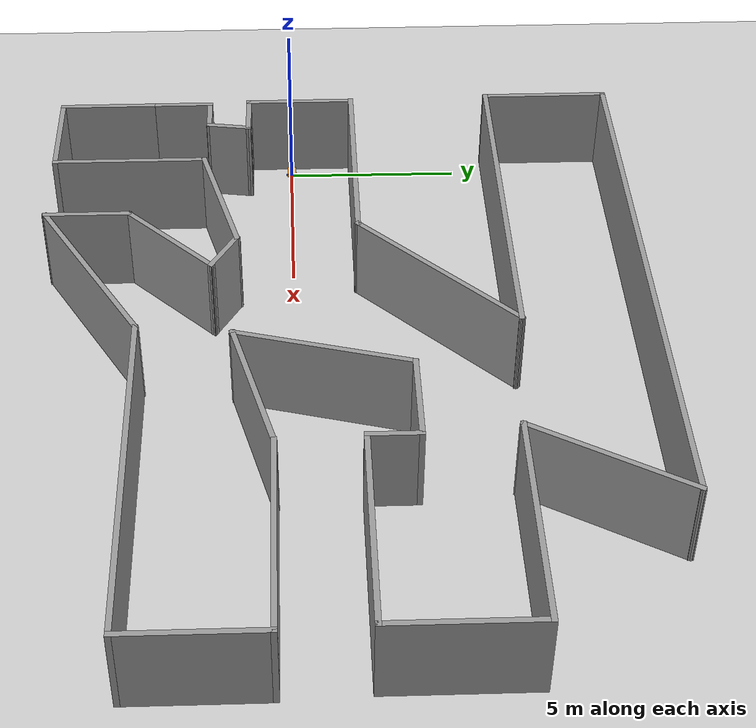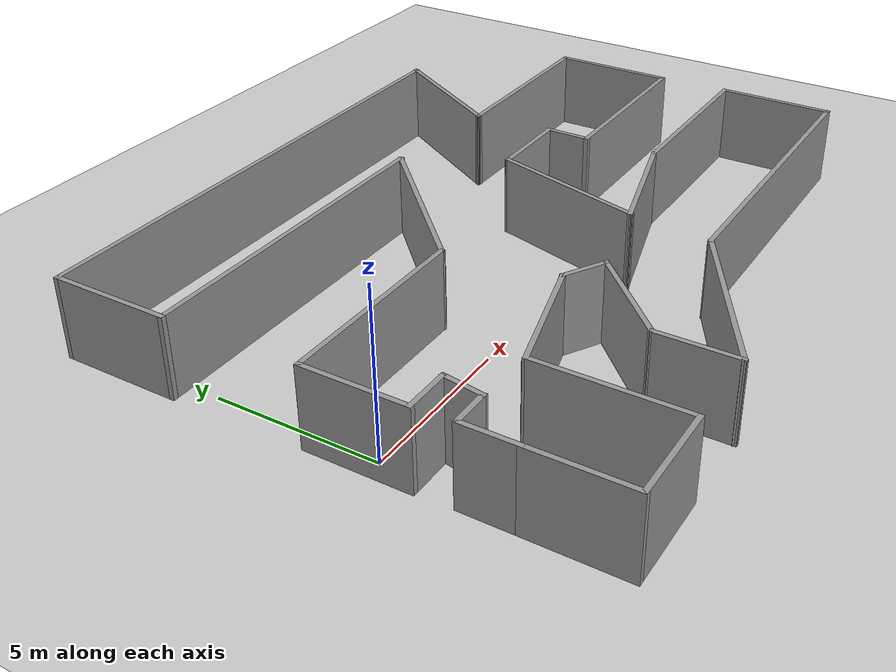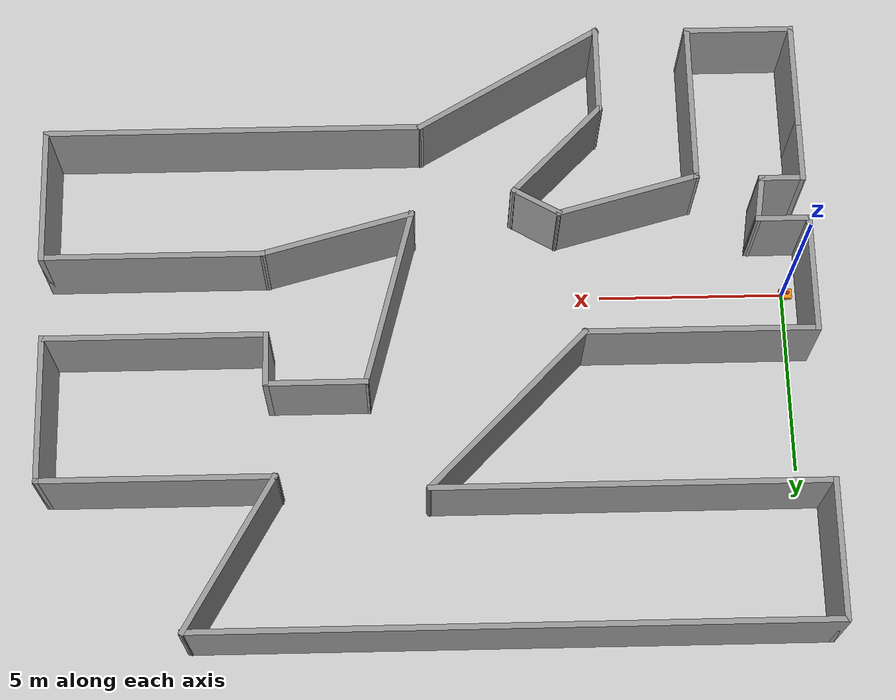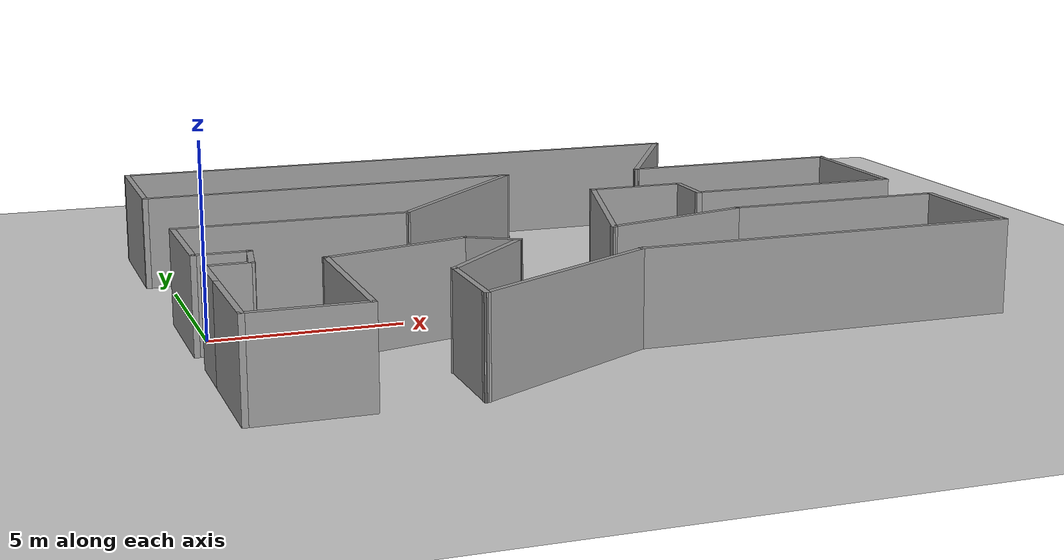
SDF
<sdf version="1.7">
 <world name="default">
  <light name="sun" type="directional">
   <pose>0 0 10 0 -0 0</pose>
   <diffuse>0.8 0.8 0.8 1</diffuse>
   <specular>0.2 0.2 0.2 1</specular>
   <attenuation>
    <range>1000</range>
    <constant>0.9</constant>
    <linear>0.01</linear>
    <quadratic>0.001</quadratic>
   </attenuation>
   <direction>-0.5 0.1 -0.9</direction>
   <spot><inner_angle>0</inner_angle><outer_angle>0</outer_angle><falloff>0</falloff></spot>
  </light>
  <model name="ground_plane">
   <static>1</static>
   <link name="link">
    <collision name="collision">
     <geometry><plane><normal>0 0 1</normal><size>100 100</size></plane></geometry>
     <surface>
      <contact><collide_bitmask>65535</collide_bitmask></contact>
      <friction><ode><mu>100</mu><mu2>50</mu2></ode></friction>
     </surface>
    </collision>
    <visual name="visual">
     <cast_shadows>0</cast_shadows>
     <geometry><plane><normal>0 0 1</normal><size>100 100</size></plane></geometry>
     <material>
      <script><uri>file://media/materials/scripts/gazebo.material</uri><name>Gazebo/Grey</name></script>
     </material>
    </visual>
   </link>
  </model>
  <gravity>0 0 -9.8</gravity>
  <magnetic_field>6e-06 2.3e-05 -4.2e-05</magnetic_field>
  <atmosphere type="adiabatic"/>
  <physics type="ode">
   <max_step_size>0.001</max_step_size>
   <real_time_factor>1</real_time_factor>
   <real_time_update_rate>1000</real_time_update_rate>
  </physics>
  <scene><ambient>0.4 0.4 0.4 1</ambient><background>0.7 0.7 0.7 1</background><shadows>1</shadows></scene>
  <spherical_coordinates>
   <surface_model>EARTH_WGS84</surface_model>
   <latitude_deg>0</latitude_deg>
   <longitude_deg>0</longitude_deg>
   <elevation>0</elevation>
   <heading_deg>0</heading_deg>
  </spherical_coordinates>
  <model name="robot_delivery">
   <link name="base_link">
    <inertial>
     <pose>-0.067475 0 0.081098 0 -0 0</pose>
     <mass>0.61</mass>
     <inertia>
      <ixx>0.00561003</ixx>
      <ixy>0</ixy>
      <ixz>0.000453811</ixz>
      <iyy>0.00760348</iyy>
      <iyz>0</iyz>
      <izz>0.00797093</izz>
     </inertia>
    </inertial>
    <collision name="base_link_fixed_joint_lump__chassis_collision">
     <pose>-0.0585 0 0.059 0 -0 0</pose>
     <geometry><box><size>0.335 0.265 0.138</size></box></geometry>
    </collision>
    <collision name="base_link_fixed_joint_lump__caster_wheel_collision_1">
     <pose>-0.151 0 -0.023 0 -0 0</pose>
     <geometry><sphere><radius>0.01</radius></sphere></geometry>
     <surface><friction><ode><mu>0.001</mu><mu2>0.001</mu2></ode></friction></surface>
    </collision>
    <collision name="base_link_fixed_joint_lump__laser_frame_collision_2">
     <pose>-0.104 0 0.202 0 -0 0</pose>
     <geometry><cylinder><length>0.04</length><radius>0.05</radius></cylinder></geometry>
    </collision>
    <visual name="base_link_fixed_joint_lump__chassis_visual">
     <pose>-0.0585 0 0.059 0 -0 0</pose>
     <geometry><box><size>0.335 0.265 0.138</size></box></geometry>
     <material>
      <script><name>Gazebo/Orange</name><uri>file://media/materials/scripts/gazebo.material</uri></script>
     </material>
    </visual>
    <visual name="base_link_fixed_joint_lump__camera_link_visual_1">
     <pose>0.079 0 0.07 0 -0 0</pose>
     <geometry><box><size>0.01 0.03 0.03</size></box></geometry>
     <material>
      <script><name>Gazebo/Red</name><uri>file://media/materials/scripts/gazebo.material</uri></script>
     </material>
    </visual>
    <visual name="base_link_fixed_joint_lump__caster_wheel_visual_2">
     <pose>-0.151 0 -0.023 0 -0 0</pose>
     <geometry><sphere><radius>0.01</radius></sphere></geometry>
     <material>
      <script><name>Gazebo/White</name><uri>file://media/materials/scripts/gazebo.material</uri></script>
     </material>
    </visual>
    <visual name="base_link_fixed_joint_lump__laser_frame_visual_3">
     <pose>-0.104 0 0.202 0 -0 0</pose>
     <geometry><cylinder><length>0.04</length><radius>0.05</radius></cylinder></geometry>
     <material>
      <script><name>Gazebo/Red</name><uri>file://media/materials/scripts/gazebo.material</uri></script>
     </material>
    </visual>
    <visual name="base_link_fixed_joint_lump__laser_frame_visual_4">
     <pose>-0.104 0 0.152 0 -0 0</pose>
     <geometry><cylinder><length>0.1</length><radius>0.01</radius></cylinder></geometry>
     <material>
      <script><name>Gazebo/Red</name><uri>file://media/materials/scripts/gazebo.material</uri></script>
     </material>
    </visual>
    <sensor name="camera" type="camera">
     <visualize>1</visualize>
     <update_rate>10</update_rate>
     <camera>
      <horizontal_fov>1.089</horizontal_fov>
      <image><format>R8G8B8</format><width>640</width><height>480</height></image>
      <clip><near>0.05</near><far>8</far></clip>
     </camera>
     <plugin name="camera_controller" filename="libgazebo_ros_camera.so">
      <frame_name>camera_link_optical</frame_name>
     </plugin>
     <pose>0.079 0 0.07 0 -0 0</pose>
    </sensor>
    <sensor name="laser" type="ray">
     <visualize>1</visualize>
     <update_rate>10</update_rate>
     <ray>
      <scan>
       <horizontal>
        <samples>360</samples>
        <min_angle>-3.14</min_angle>
        <max_angle>3.14</max_angle>
        <resolution>1</resolution>
       </horizontal>
       <vertical><samples>1</samples><min_angle>0</min_angle><max_angle>0</max_angle></vertical>
      </scan>
      <range><min>0.3</min><max>12</max></range>
     </ray>
     <plugin name="laser_controller" filename="libgazebo_ros_ray_sensor.so">
      <ros><argument>~/out:=scan</argument></ros>
      <output_type>sensor_msgs/LaserScan</output_type>
      <frame_name>laser_frame</frame_name>
     </plugin>
     <pose>-0.104 0 0.202 0 -0 0</pose>
    </sensor>
   </link>
   <joint name="left_wheel_joint" type="revolute">
    <pose relative_to="base_link">0 0.1485 0 -1.5708 0 0</pose>
    <parent>base_link</parent>
    <child>left_wheel</child>
    <axis>
     <xyz>0 0 1</xyz>
     <limit><lower>-1e+16</lower><upper>1e+16</upper></limit>
     <dynamics><spring_reference>0</spring_reference><spring_stiffness>0</spring_stiffness></dynamics>
    </axis>
   </joint>
   <link name="left_wheel">
    <pose relative_to="left_wheel_joint">0 0 0 0 -0 0</pose>
    <inertial>
     <mass>0.05</mass>
     <inertia>
      <ixx>1.64292e-05</ixx>
      <ixy>0</ixy>
      <ixz>0</ixz>
      <iyy>1.64292e-05</iyy>
      <iyz>0</iyz>
      <izz>2.7225e-05</izz>
     </inertia>
    </inertial>
    <collision name="left_wheel_collision">
     <geometry><sphere><radius>0.033</radius></sphere></geometry>
    </collision>
    <visual name="left_wheel_visual">
     <geometry><cylinder><length>0.026</length><radius>0.033</radius></cylinder></geometry>
     <material>
      <script><name>Gazebo/Blue</name><uri>file://media/materials/scripts/gazebo.material</uri></script>
     </material>
    </visual>
   </link>
   <joint name="right_wheel_joint" type="revolute">
    <pose relative_to="base_link">0 -0.1485 0 1.5708 -0 0</pose>
    <parent>base_link</parent>
    <child>right_wheel</child>
    <axis>
     <xyz>0 0 -1</xyz>
     <limit><lower>-1e+16</lower><upper>1e+16</upper></limit>
     <dynamics><spring_reference>0</spring_reference><spring_stiffness>0</spring_stiffness></dynamics>
    </axis>
   </joint>
   <link name="right_wheel">
    <pose relative_to="right_wheel_joint">0 0 0 0 -0 0</pose>
    <inertial>
     <mass>0.05</mass>
     <inertia>
      <ixx>1.64292e-05</ixx>
      <ixy>0</ixy>
      <ixz>0</ixz>
      <iyy>1.64292e-05</iyy>
      <iyz>0</iyz>
      <izz>2.7225e-05</izz>
     </inertia>
    </inertial>
    <collision name="right_wheel_collision">
     <geometry><sphere><radius>0.033</radius></sphere></geometry>
    </collision>
    <visual name="right_wheel_visual">
     <geometry><cylinder><length>0.026</length><radius>0.033</radius></cylinder></geometry>
     <material>
      <script><name>Gazebo/Blue</name><uri>file://media/materials/scripts/gazebo.material</uri></script>
     </material>
    </visual>
   </link>
   <static>0</static>
   <plugin name="diff_drive" filename="libgazebo_ros_diff_drive.so">
    <left_joint>left_wheel_joint</left_joint>
    <right_joint>right_wheel_joint</right_joint>
    <wheel_separation>0.35</wheel_separation>
    <wheel_diameter>0.1</wheel_diameter>
    <max_wheel_torque>200</max_wheel_torque>
    <max_wheel_acceleration>10.0</max_wheel_acceleration>
    <odomoetry_frame>odom</odomoetry_frame>
    <robot_base_frame>base_link</robot_base_frame>
    <publish_odom>1</publish_odom>
    <publish_odom_tf>1</publish_odom_tf>
    <publish_wheel_tf>1</publish_wheel_tf>
   </plugin>
   <pose>-0.035609 0.000141 0.033 0 6e-06 0.00063</pose>
  </model>
  <model name="labirin1">
   <pose>9.67665 1.31689 0 0 -0 0</pose>
   <link name="Wall_19">
    <collision name="Wall_19_Collision">
     <geometry><box><size>3.25 0.15 2.5</size></box></geometry>
     <pose>0 0 1.25 0 -0 0</pose>
    </collision>
    <visual name="Wall_19_Visual">
     <pose>0 0 1.25 0 -0 0</pose>
     <geometry><box><size>3.25 0.15 2.5</size></box></geometry>
     <material>
      <script><uri>file://media/materials/scripts/gazebo.material</uri><name>Gazebo/Grey</name></script>
      <ambient>1 1 1 1</ambient>
     </material>
     <meta><layer>0</layer></meta>
    </visual>
    <pose>-10.1391 -1.03293 0 0 -0 -1.5708</pose>
   </link>
   <link name="Wall_23">
    <collision name="Wall_23_Collision">
     <geometry><box><size>6.25 0.15 2.5</size></box></geometry>
     <pose>0 0 1.25 0 -0 0</pose>
    </collision>
    <visual name="Wall_23_Visual">
     <pose>0 0 1.25 0 -0 0</pose>
     <geometry><box><size>6.25 0.15 2.5</size></box></geometry>
     <material>
      <script><uri>file://media/materials/scripts/gazebo.material</uri><name>Gazebo/Grey</name></script>
      <ambient>1 1 1 1</ambient>
     </material>
     <meta><layer>0</layer></meta>
    </visual>
    <pose>-7.08909 0.517075 0 0 -0 0</pose>
   </link>
   <link name="Wall_25">
    <collision name="Wall_25_Collision">
     <geometry><box><size>6 0.15 2.5</size></box></geometry>
     <pose>0 0 1.25 0 -0 0</pose>
    </collision>
    <visual name="Wall_25_Visual">
     <pose>0 0 1.25 0 -0 0</pose>
     <geometry><box><size>6 0.15 2.5</size></box></geometry>
     <material>
      <script><uri>file://media/materials/scripts/gazebo.material</uri><name>Gazebo/Grey</name></script>
      <ambient>1 1 1 1</ambient>
     </material>
     <meta><layer>0</layer></meta>
    </visual>
    <pose>-1.9708 2.58536 0 0 -0 0.785398</pose>
   </link>
   <link name="Wall_26">
    <collision name="Wall_26_Collision">
     <geometry><box><size>10.5 0.15 2.5</size></box></geometry>
     <pose>0 0 1.25 0 -0 0</pose>
    </collision>
    <visual name="Wall_26_Visual">
     <pose>0 0 1.25 0 -0 0</pose>
     <geometry><box><size>10.5 0.15 2.5</size></box></geometry>
     <material>
      <script><uri>file://media/materials/scripts/gazebo.material</uri><name>Gazebo/Grey</name></script>
      <ambient>1 1 1 1</ambient>
     </material>
     <meta><layer>0</layer></meta>
    </visual>
    <pose>-5.07751 4.65365 0 0 -0 3.14159</pose>
   </link>
   <link name="Wall_27">
    <collision name="Wall_27_Collision">
     <geometry><box><size>3.75 0.15 2.5</size></box></geometry>
     <pose>0 0 1.25 0 -0 0</pose>
    </collision>
    <visual name="Wall_27_Visual">
     <pose>0 0 1.25 0 -0 0</pose>
     <geometry><box><size>3.75 0.15 2.5</size></box></geometry>
     <material>
      <script><uri>file://media/materials/scripts/gazebo.material</uri><name>Gazebo/Grey</name></script>
      <ambient>1 1 1 1</ambient>
     </material>
     <meta><layer>0</layer></meta>
    </visual>
    <pose>-10.2525 6.45365 0 0 -0 1.5708</pose>
   </link>
   <link name="Wall_28">
    <collision name="Wall_28_Collision">
     <geometry><box><size>16.75 0.15 2.5</size></box></geometry>
     <pose>0 0 1.25 0 -0 0</pose>
    </collision>
    <visual name="Wall_28_Visual">
     <pose>0 0 1.25 0 -0 0</pose>
     <geometry><box><size>16.75 0.15 2.5</size></box></geometry>
     <material>
      <script><uri>file://media/materials/scripts/gazebo.material</uri><name>Gazebo/Grey</name></script>
      <ambient>1 1 1 1</ambient>
     </material>
     <meta><layer>0</layer></meta>
    </visual>
    <pose>-1.95251 8.25365 0 0 -0 0</pose>
   </link>
   <link name="Wall_29">
    <collision name="Wall_29_Collision">
     <geometry><box><size>4.75 0.15 2.5</size></box></geometry>
     <pose>0 0 1.25 0 -0 0</pose>
    </collision>
    <visual name="Wall_29_Visual">
     <pose>0 0 1.25 0 -0 0</pose>
     <geometry><box><size>4.75 0.15 2.5</size></box></geometry>
     <material>
      <script><uri>file://media/materials/scripts/gazebo.material</uri><name>Gazebo/Grey</name></script>
      <ambient>1 1 1 1</ambient>
     </material>
     <meta><layer>0</layer></meta>
    </visual>
    <pose>5.19749 6.26179 0 0 -0 -2.0944</pose>
   </link>
   <link name="Wall_30">
    <collision name="Wall_30_Collision">
     <geometry><box><size>6.25 0.15 2.5</size></box></geometry>
     <pose>0 0 1.25 0 -0 0</pose>
    </collision>
    <visual name="Wall_30_Visual">
     <pose>0 0 1.25 0 -0 0</pose>
     <geometry><box><size>6.25 0.15 2.5</size></box></geometry>
     <material>
      <script><uri>file://media/materials/scripts/gazebo.material</uri><name>Gazebo/Grey</name></script>
      <ambient>1 1 1 1</ambient>
     </material>
     <meta><layer>0</layer></meta>
    </visual>
    <pose>7.09749 4.26993 0 0 -0 0</pose>
   </link>
   <link name="Wall_31">
    <collision name="Wall_31_Collision">
     <geometry><box><size>4 0.15 2.5</size></box></geometry>
     <pose>0 0 1.25 0 -0 0</pose>
    </collision>
    <visual name="Wall_31_Visual">
     <pose>0 0 1.25 0 -0 0</pose>
     <geometry><box><size>4 0.15 2.5</size></box></geometry>
     <material>
      <script><uri>file://media/materials/scripts/gazebo.material</uri><name>Gazebo/Grey</name></script>
      <ambient>1 1 1 1</ambient>
     </material>
     <meta><layer>0</layer></meta>
    </visual>
    <pose>10.1475 2.34493 0 0 -0 -1.5708</pose>
   </link>
   <link name="Wall_32">
    <collision name="Wall_32_Collision">
     <geometry><box><size>6 0.15 2.5</size></box></geometry>
     <pose>0 0 1.25 0 -0 0</pose>
    </collision>
    <visual name="Wall_32_Visual">
     <pose>0 0 1.25 0 -0 0</pose>
     <geometry><box><size>6 0.15 2.5</size></box></geometry>
     <material>
      <script><uri>file://media/materials/scripts/gazebo.material</uri><name>Gazebo/Grey</name></script>
      <ambient>1 1 1 1</ambient>
     </material>
     <meta><layer>0</layer></meta>
    </visual>
    <pose>7.22249 0.419933 0 0 -0 3.14159</pose>
   </link>
   <link name="Wall_33">
    <collision name="Wall_33_Collision">
     <geometry><box><size>1.5 0.15 2.5</size></box></geometry>
     <pose>0 0 1.25 0 -0 0</pose>
    </collision>
    <visual name="Wall_33_Visual">
     <pose>0 0 1.25 0 -0 0</pose>
     <geometry><box><size>1.5 0.15 2.5</size></box></geometry>
     <material>
      <script><uri>file://media/materials/scripts/gazebo.material</uri><name>Gazebo/Grey</name></script>
      <ambient>1 1 1 1</ambient>
     </material>
     <meta><layer>0</layer></meta>
    </visual>
    <pose>4.29749 1.09493 0 0 -0 1.5708</pose>
   </link>
   <link name="Wall_34">
    <collision name="Wall_34_Collision">
     <geometry><box><size>2.75 0.15 2.5</size></box></geometry>
     <pose>0 0 1.25 0 -0 0</pose>
    </collision>
    <visual name="Wall_34_Visual">
     <pose>0 0 1.25 0 -0 0</pose>
     <geometry><box><size>2.75 0.15 2.5</size></box></geometry>
     <material>
      <script><uri>file://media/materials/scripts/gazebo.material</uri><name>Gazebo/Grey</name></script>
      <ambient>1 1 1 1</ambient>
     </material>
     <meta><layer>0</layer></meta>
    </visual>
    <pose>2.99749 1.76993 0 0 -0 3.14159</pose>
   </link>
   <link name="Wall_35">
    <collision name="Wall_35_Collision">
     <geometry><box><size>5 0.15 2.5</size></box></geometry>
     <pose>0 0 1.25 0 -0 0</pose>
    </collision>
    <visual name="Wall_35_Visual">
     <pose>0 0 1.25 0 -0 0</pose>
     <geometry><box><size>5 0.15 2.5</size></box></geometry>
     <material>
      <script><uri>file://media/materials/scripts/gazebo.material</uri><name>Gazebo/Grey</name></script>
      <ambient>1 1 1 1</ambient>
     </material>
     <meta><layer>0</layer></meta>
    </visual>
    <pose>1.06985 -0.572437 0 0 -0 -1.8326</pose>
   </link>
   <link name="Wall_36">
    <collision name="Wall_36_Collision">
     <geometry><box><size>4.25 0.15 2.5</size></box></geometry>
     <pose>0 0 1.25 0 -0 0</pose>
    </collision>
    <visual name="Wall_36_Visual">
     <pose>0 0 1.25 0 -0 0</pose>
     <geometry><box><size>4.25 0.15 2.5</size></box></geometry>
     <material>
      <script><uri>file://media/materials/scripts/gazebo.material</uri><name>Gazebo/Grey</name></script>
      <ambient>1 1 1 1</ambient>
     </material>
     <meta><layer>0</layer></meta>
    </visual>
    <pose>2.42236 -2.38423 0 0 -0 0.261799</pose>
   </link>
   <link name="Wall_39">
    <collision name="Wall_39_Collision">
     <geometry><box><size>6 0.15 2.5</size></box></geometry>
     <pose>0 0 1.25 0 -0 0</pose>
    </collision>
    <visual name="Wall_39_Visual">
     <pose>0 0 1.25 0 -0 0</pose>
     <geometry><box><size>6 0.15 2.5</size></box></geometry>
     <material>
      <script><uri>file://media/materials/scripts/gazebo.material</uri><name>Gazebo/Grey</name></script>
      <ambient>1 1 1 1</ambient>
     </material>
     <meta><layer>0</layer></meta>
    </visual>
    <pose>7.32751 -1.85365 0 0 -0 0</pose>
   </link>
   <link name="Wall_40">
    <collision name="Wall_40_Collision">
     <geometry><box><size>3.75 0.15 2.5</size></box></geometry>
     <pose>0 0 1.25 0 -0 0</pose>
    </collision>
    <visual name="Wall_40_Visual">
     <pose>0 0 1.25 0 -0 0</pose>
     <geometry><box><size>3.75 0.15 2.5</size></box></geometry>
     <material>
      <script><uri>file://media/materials/scripts/gazebo.material</uri><name>Gazebo/Grey</name></script>
      <ambient>1 1 1 1</ambient>
     </material>
     <meta><layer>0</layer></meta>
    </visual>
    <pose>10.2525 -3.65365 0 0 -0 -1.5708</pose>
   </link>
   <link name="Wall_41">
    <collision name="Wall_41_Collision">
     <geometry><box><size>10.25 0.15 2.5</size></box></geometry>
     <pose>0 0 1.25 0 -0 0</pose>
    </collision>
    <visual name="Wall_41_Visual">
     <pose>0 0 1.25 0 -0 0</pose>
     <geometry><box><size>10.25 0.15 2.5</size></box></geometry>
     <material>
      <script><uri>file://media/materials/scripts/gazebo.material</uri><name>Gazebo/Grey</name></script>
      <ambient>1 1 1 1</ambient>
     </material>
     <meta><layer>0</layer></meta>
    </visual>
    <pose>5.20251 -5.45365 0 0 -0 3.14159</pose>
   </link>
   <link name="Wall_42">
    <collision name="Wall_42_Collision">
     <geometry><box><size>5.75 0.15 2.5</size></box></geometry>
     <pose>0 0 1.25 0 -0 0</pose>
    </collision>
    <visual name="Wall_42_Visual">
     <pose>0 0 1.25 0 -0 0</pose>
     <geometry><box><size>5.75 0.15 2.5</size></box></geometry>
     <material>
      <script><uri>file://media/materials/scripts/gazebo.material</uri><name>Gazebo/Grey</name></script>
      <ambient>1 1 1 1</ambient>
     </material>
     <meta><layer>0</layer></meta>
    </visual>
    <pose>-2.27236 -6.85365 0 0 -0 -2.61799</pose>
   </link>
   <link name="Wall_43">
    <collision name="Wall_43_Collision">
     <geometry><box><size>2.5 0.15 2.5</size></box></geometry>
     <pose>0 0 1.25 0 -0 0</pose>
    </collision>
    <visual name="Wall_43_Visual">
     <pose>0 0 1.25 0 -0 0</pose>
     <geometry><box><size>2.5 0.15 2.5</size></box></geometry>
     <material>
      <script><uri>file://media/materials/scripts/gazebo.material</uri><name>Gazebo/Grey</name></script>
      <ambient>1 1 1 1</ambient>
     </material>
     <meta><layer>0</layer></meta>
    </visual>
    <pose>-4.69723 -7.07865 0 0 -0 1.5708</pose>
   </link>
   <link name="Wall_44">
    <collision name="Wall_44_Collision">
     <geometry><box><size>3.5 0.15 2.5</size></box></geometry>
     <pose>0 0 1.25 0 -0 0</pose>
    </collision>
    <visual name="Wall_44_Visual">
     <pose>0 0 1.25 0 -0 0</pose>
     <geometry><box><size>3.5 0.15 2.5</size></box></geometry>
     <material>
      <script><uri>file://media/materials/scripts/gazebo.material</uri><name>Gazebo/Grey</name></script>
      <ambient>1 1 1 1</ambient>
     </material>
     <meta><layer>0</layer></meta>
    </visual>
    <pose>-3.51283 -4.71924 0 0 -0 0.785398</pose>
   </link>
   <link name="Wall_45">
    <collision name="Wall_45_Collision">
     <geometry><box><size>1.5 0.15 2.5</size></box></geometry>
     <pose>0 0 1.25 0 -0 0</pose>
    </collision>
    <visual name="Wall_45_Visual">
     <pose>0 0 1.25 0 -0 0</pose>
     <geometry><box><size>1.5 0.15 2.5</size></box></geometry>
     <material>
      <script><uri>file://media/materials/scripts/gazebo.material</uri><name>Gazebo/Grey</name></script>
      <ambient>1 1 1 1</ambient>
     </material>
     <meta><layer>0</layer></meta>
    </visual>
    <pose>-2.91299 -3.19734 0 0 -0 2.61799</pose>
   </link>
   <link name="Wall_46">
    <collision name="Wall_46_Collision">
     <geometry><box><size>4 0.15 2.5</size></box></geometry>
     <pose>0 0 1.25 0 -0 0</pose>
    </collision>
    <visual name="Wall_46_Visual">
     <pose>0 0 1.25 0 -0 0</pose>
     <geometry><box><size>4 0.15 2.5</size></box></geometry>
     <material>
      <script><uri>file://media/materials/scripts/gazebo.material</uri><name>Gazebo/Grey</name></script>
      <ambient>1 1 1 1</ambient>
     </material>
     <meta><layer>0</layer></meta>
    </visual>
    <pose>-5.35696 -3.35807 0 0 -0 -2.87979</pose>
   </link>
   <link name="Wall_47">
    <collision name="Wall_47_Collision">
     <geometry><box><size>4.5 0.15 2.5</size></box></geometry>
     <pose>0 0 1.25 0 -0 0</pose>
    </collision>
    <visual name="Wall_47_Visual">
     <pose>0 0 1.25 0 -0 0</pose>
     <geometry><box><size>4.5 0.15 2.5</size></box></geometry>
     <material>
      <script><uri>file://media/materials/scripts/gazebo.material</uri><name>Gazebo/Grey</name></script>
      <ambient>1 1 1 1</ambient>
     </material>
     <meta><layer>0</layer></meta>
    </visual>
    <pose>-7.21637 -6.0313 0 0 -0 -1.5708</pose>
   </link>
   <link name="Wall_48">
    <collision name="Wall_48_Collision">
     <geometry><box><size>3 0.15 2.5</size></box></geometry>
     <pose>0 0 1.25 0 -0 0</pose>
    </collision>
    <visual name="Wall_48_Visual">
     <pose>0 0 1.25 0 -0 0</pose>
     <geometry><box><size>3 0.15 2.5</size></box></geometry>
     <material>
      <script><uri>file://media/materials/scripts/gazebo.material</uri><name>Gazebo/Grey</name></script>
      <ambient>1 1 1 1</ambient>
     </material>
     <meta><layer>0</layer></meta>
    </visual>
    <pose>-8.64137 -8.2063 0 0 -0 3.14159</pose>
   </link>
   <link name="Wall_49">
    <collision name="Wall_49_Collision">
     <geometry><box><size>3 0.15 2.5</size></box></geometry>
     <pose>0 0 1.25 0 -0 0</pose>
    </collision>
    <visual name="Wall_49_Visual">
     <pose>0 0 1.25 0 -0 0</pose>
     <geometry><box><size>3 0.15 2.5</size></box></geometry>
     <material>
      <script><uri>file://media/materials/scripts/gazebo.material</uri><name>Gazebo/Grey</name></script>
      <ambient>1 1 1 1</ambient>
     </material>
     <meta><layer>0</layer></meta>
    </visual>
    <pose>-10.0664 -6.7813 0 0 -0 1.5708</pose>
   </link>
   <link name="Wall_50">
    <collision name="Wall_50_Collision">
     <geometry><box><size>1.75 0.15 2.5</size></box></geometry>
     <pose>0 0 1.25 0 -0 0</pose>
    </collision>
    <visual name="Wall_50_Visual">
     <pose>0 0 1.25 0 -0 0</pose>
     <geometry><box><size>1.75 0.15 2.5</size></box></geometry>
     <material>
      <script><uri>file://media/materials/scripts/gazebo.material</uri><name>Gazebo/Grey</name></script>
      <ambient>1 1 1 1</ambient>
     </material>
     <meta><layer>0</layer></meta>
    </visual>
    <pose>-10.0664 -4.5563 0 0 -0 1.5708</pose>
   </link>
   <link name="Wall_51">
    <collision name="Wall_51_Collision">
     <geometry><box><size>1.25 0.15 2.5</size></box></geometry>
     <pose>0 0 1.25 0 -0 0</pose>
    </collision>
    <visual name="Wall_51_Visual">
     <pose>0 0 1.25 0 -0 0</pose>
     <geometry><box><size>1.25 0.15 2.5</size></box></geometry>
     <material>
      <script><uri>file://media/materials/scripts/gazebo.material</uri><name>Gazebo/Grey</name></script>
      <ambient>1 1 1 1</ambient>
     </material>
     <meta><layer>0</layer></meta>
    </visual>
    <pose>-9.51637 -3.7563 0 0 -0 0</pose>
   </link>
   <link name="Wall_55">
    <collision name="Wall_55_Collision">
     <geometry><box><size>1.5 0.15 2.5</size></box></geometry>
     <pose>0 0 1.25 0 -0 0</pose>
    </collision>
    <visual name="Wall_55_Visual">
     <pose>0 0 1.25 0 -0 0</pose>
     <geometry><box><size>1.5 0.15 2.5</size></box></geometry>
     <material>
      <script><uri>file://media/materials/scripts/gazebo.material</uri><name>Gazebo/Grey</name></script>
      <ambient>1 1 1 1</ambient>
     </material>
     <meta><layer>0</layer></meta>
    </visual>
    <pose>-9.46409 -2.58292 0 0 -0 0</pose>
   </link>
   <link name="Wall_57">
    <collision name="Wall_57_Collision">
     <geometry><box><size>1.33669 0.15 2.5</size></box></geometry>
     <pose>0 0 1.25 0 -0 0</pose>
    </collision>
    <visual name="Wall_57_Visual">
     <pose>0 0 1.25 0 -0 0</pose>
     <geometry><box><size>1.33669 0.15 2.5</size></box></geometry>
     <material>
      <script><uri>file://media/materials/scripts/gazebo.material</uri><name>Gazebo/Grey</name></script>
      <ambient>1 1 1 1</ambient>
     </material>
     <meta><layer>0</layer></meta>
    </visual>
    <pose>-8.87773 -3.16961 0 0 -0 -1.72075</pose>
   </link>
   <static>1</static>
  </model>
 </world>
</sdf>
